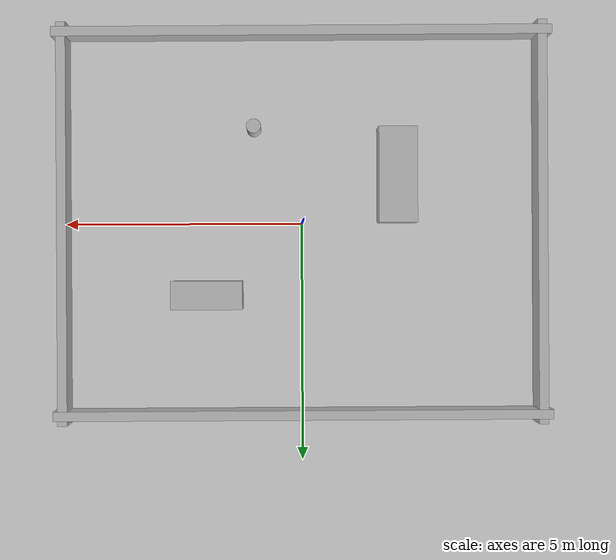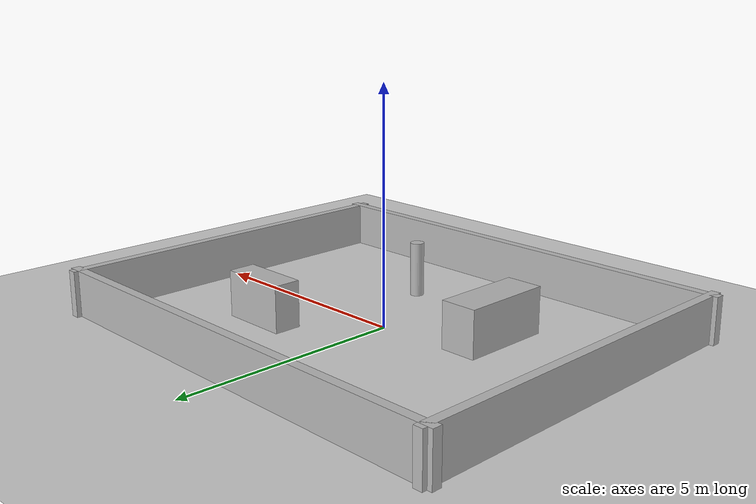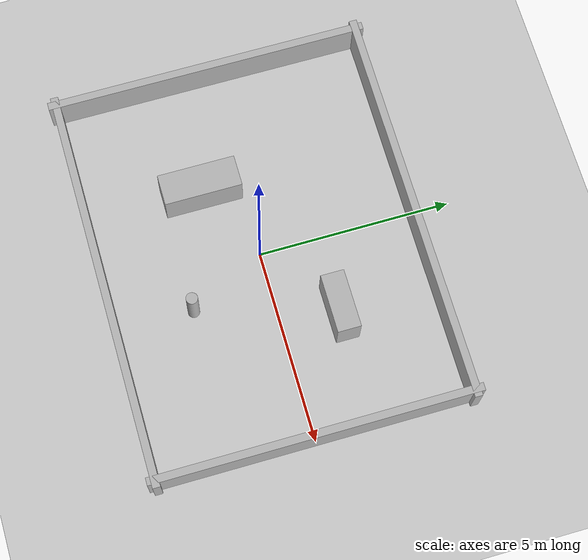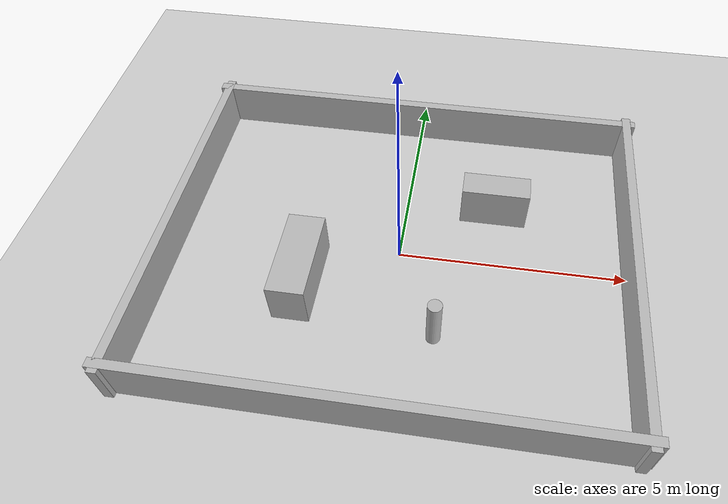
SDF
<?xml version="1.0" ?>
<sdf version="1.6">
  <world name="robie_warehouse">
    <include><uri>model://ground_plane</uri></include>
    <include><uri>model://sun</uri></include>
    <model name="room">
      <static>true</static>
      <link name="walls">
        <collision name="wall_n"><pose>0 4 0.5 0 0 0</pose><geometry><box><size>10.4 0.2 1.0</size></box></geometry></collision>
        <visual name="wall_n_v"><pose>0 4 0.5 0 0 0</pose><geometry><box><size>10.4 0.2 1.0</size></box></geometry></visual>
        <collision name="wall_s"><pose>0 -4 0.5 0 0 0</pose><geometry><box><size>10.4 0.2 1.0</size></box></geometry></collision>
        <visual name="wall_s_v"><pose>0 -4 0.5 0 0 0</pose><geometry><box><size>10.4 0.2 1.0</size></box></geometry></visual>
        <collision name="wall_e"><pose>5 0 0.5 0 0 0</pose><geometry><box><size>0.2 8.4 1.0</size></box></geometry></collision>
        <visual name="wall_e_v"><pose>5 0 0.5 0 0 0</pose><geometry><box><size>0.2 8.4 1.0</size></box></geometry></visual>
        <collision name="wall_w"><pose>-5 0 0.5 0 0 0</pose><geometry><box><size>0.2 8.4 1.0</size></box></geometry></collision>
        <visual name="wall_w_v"><pose>-5 0 0.5 0 0 0</pose><geometry><box><size>0.2 8.4 1.0</size></box></geometry></visual>
      </link>
    </model>
    <model name="shelf1">
      <static>true</static>
      <link name="link"><pose>2.0 1.5 0.5 0 0 0</pose>
        <collision name="c"><geometry><box><size>1.5 0.6 1.0</size></box></geometry></collision>
        <visual name="v"><geometry><box><size>1.5 0.6 1.0</size></box></geometry></visual>
      </link>
    </model>
    <model name="shelf2">
      <static>true</static>
      <link name="link"><pose>-2.0 -1.0 0.5 0 0 0</pose>
        <collision name="c"><geometry><box><size>0.8 2.0 1.0</size></box></geometry></collision>
        <visual name="v"><geometry><box><size>0.8 2.0 1.0</size></box></geometry></visual>
      </link>
    </model>
    <model name="pipe">
      <static>true</static>
      <link name="link"><pose>1.0 -2.0 0.6 0 0 0</pose>
        <collision name="c"><geometry><cylinder><radius>0.15</radius><length>1.2</length></cylinder></geometry></collision>
        <visual name="v"><geometry><cylinder><radius>0.15</radius><length>1.2</length></cylinder></geometry></visual>
      </link>
    </model>
  </world>
</sdf>
